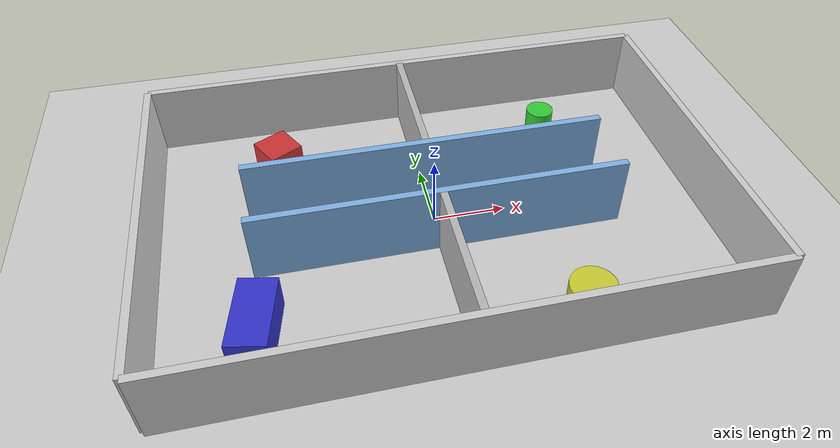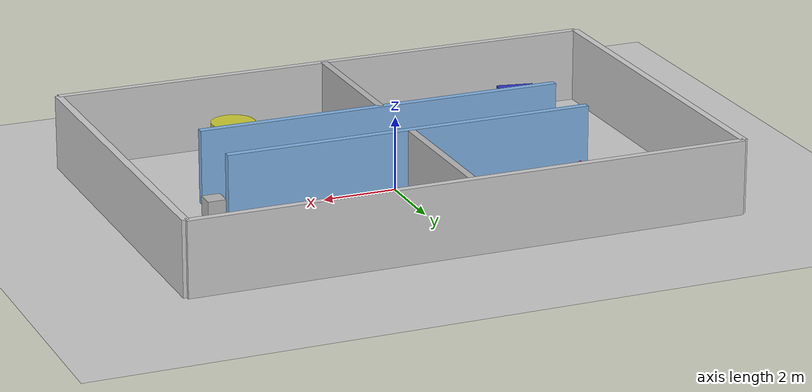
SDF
<?xml version="1.0" ?>
<sdf version="1.6">
  <world name="emrmf_indoor_world">

    <!-- Lighting -->
    <include>
      <uri>model://sun</uri>
    </include>

    <!-- Ground -->
    <include>
      <uri>model://ground_plane</uri>
    </include>

    <!-- Outer Walls (15m x 10m) -->
    <!-- North Wall -->
    <model name="outer_wall_n">
      <pose>0 5 1 0 0 0</pose>
      <static>true</static>
      <link name="link">
        <collision name="col"><geometry><box><size>15 0.2 2</size></box></geometry></collision>
        <visual name="vis">
          <geometry><box><size>15 0.2 2</size></box></geometry>
          <material><ambient>0.8 0.8 0.8 1</ambient></material>
        </visual>
      </link>
    </model>

    <!-- South Wall -->
    <model name="outer_wall_s">
      <pose>0 -5 1 0 0 0</pose>
      <static>true</static>
      <link name="link">
        <collision name="col"><geometry><box><size>15 0.2 2</size></box></geometry></collision>
        <visual name="vis">
          <geometry><box><size>15 0.2 2</size></box></geometry>
          <material><ambient>0.8 0.8 0.8 1</ambient></material>
        </visual>
      </link>
    </model>

    <!-- East Wall -->
    <model name="outer_wall_e">
      <pose>7.5 0 1 0 0 0</pose>
      <static>true</static>
      <link name="link">
        <collision name="col"><geometry><box><size>0.2 10 2</size></box></geometry></collision>
        <visual name="vis">
          <geometry><box><size>0.2 10 2</size></box></geometry>
          <material><ambient>0.8 0.8 0.8 1</ambient></material>
        </visual>
      </link>
    </model>

    <!-- West Wall -->
    <model name="outer_wall_w">
      <pose>-7.5 0 1 0 0 0</pose>
      <static>true</static>
      <link name="link">
        <collision name="col"><geometry><box><size>0.2 10 2</size></box></geometry></collision>
        <visual name="vis">
          <geometry><box><size>0.2 10 2</size></box></geometry>
          <material><ambient>0.8 0.8 0.8 1</ambient></material>
        </visual>
      </link>
    </model>

    <!-- Inner Layout: Central Corridor and 4 Rooms -->
    <!-- Corridor Upper Wall -->
    <model name="corridor_wall_n">
      <pose>0 1 1 0 0 0</pose>
      <static>true</static>
      <link name="link">
        <collision name="col"><geometry><box><size>10 0.2 2</size></box></geometry></collision>
        <visual name="vis">
          <geometry><box><size>10 0.2 2</size></box></geometry>
          <material><ambient>0.5 0.7 0.9 1</ambient></material>
        </visual>
      </link>
    </model>

    <!-- Corridor Lower Wall -->
    <model name="corridor_wall_s">
      <pose>0 -1 1 0 0 0</pose>
      <static>true</static>
      <link name="link">
        <collision name="col"><geometry><box><size>10 0.2 2</size></box></geometry></collision>
        <visual name="vis">
          <geometry><box><size>10 0.2 2</size></box></geometry>
          <material><ambient>0.5 0.7 0.9 1</ambient></material>
        </visual>
      </link>
    </model>

    <!-- Dividing wall between Room 1 (NW) and Room 2 (NE) -->
    <model name="div_wall_1_2">
      <pose>0 3 1 0 0 0</pose>
      <static>true</static>
      <link name="link">
        <collision name="col"><geometry><box><size>0.2 4 2</size></box></geometry></collision>
        <visual name="vis"><geometry><box><size>0.2 4 2</size></box></geometry></visual>
      </link>
    </model>

    <!-- Dividing wall between Room 3 (SW) and Room 4 (SE) -->
    <model name="div_wall_3_4">
      <pose>0 -3 1 0 0 0</pose>
      <static>true</static>
      <link name="link">
        <collision name="col"><geometry><box><size>0.2 4 2</size></box></geometry></collision>
        <visual name="vis"><geometry><box><size>0.2 4 2</size></box></geometry></visual>
      </link>
    </model>

    <!-- Doorways (Openings) -->
    <!-- Doorway Room 1 -->
    <model name="door_r1">
      <pose>-3 1 1 0 0 0</pose>
      <static>true</static>
      <link name="link">
        <!-- We use an invisible box to represent the gap, so no collision -->
      </link>
    </model>

    <!-- Objects / Furniture for SLAM Features -->
    <!-- Room 1 (NW) -->
    <model name="box_r1">
      <pose>-4 3 0.5 0 0 0.5</pose>
      <static>true</static>
      <link name="link">
        <collision name="col"><geometry><box><size>1 1 1</size></box></geometry></collision>
        <visual name="vis">
          <geometry><box><size>1 1 1</size></box></geometry>
          <material><ambient>0.8 0.2 0.2 1</ambient></material>
        </visual>
      </link>
    </model>

    <!-- Room 2 (NE) -->
    <model name="cylinder_r2">
      <pose>4 3 0.5 0 0 0</pose>
      <static>true</static>
      <link name="link">
        <collision name="col"><geometry><cylinder><radius>0.4</radius><length>1</length></cylinder></geometry></collision>
        <visual name="vis">
          <geometry><cylinder><radius>0.4</radius><length>1</length></cylinder></geometry>
          <material><ambient>0.2 0.8 0.2 1</ambient></material>
        </visual>
      </link>
    </model>

    <!-- Room 3 (SW) -->
    <model name="box_r3">
      <pose>-5 -3 0.5 0 0 -0.2</pose>
      <static>true</static>
      <link name="link">
        <collision name="col"><geometry><box><size>1 2 1</size></box></geometry></collision>
        <visual name="vis">
          <geometry><box><size>1 2 1</size></box></geometry>
          <material><ambient>0.2 0.2 0.8 1</ambient></material>
        </visual>
      </link>
    </model>

    <!-- Room 4 (SE) -->
    <model name="cylinder_r4">
      <pose>3 -4 0.5 0 0 0</pose>
      <static>true</static>
      <link name="link">
        <collision name="col"><geometry><cylinder><radius>0.6</radius><length>1</length></cylinder></geometry></collision>
        <visual name="vis">
          <geometry><cylinder><radius>0.6</radius><length>1</length></cylinder></geometry>
          <material><ambient>0.8 0.8 0.2 1</ambient></material>
        </visual>
      </link>
    </model>

    <!-- Corridor Obstacles -->
    <model name="corridor_box">
      <pose>5 0 0.25 0 0 0</pose>
      <static>true</static>
      <link name="link">
        <collision name="col"><geometry><box><size>0.5 0.5 0.5</size></box></geometry></collision>
        <visual name="vis"><geometry><box><size>0.5 0.5 0.5</size></box></geometry></visual>
      </link>
    </model>

    <!-- Scene settings -->
    <scene>
      <ambient>0.4 0.4 0.4 1</ambient>
      <background>0.7 0.7 0.7 1</background>
      <shadows>true</shadows>
    </scene>

  </world>
</sdf>
